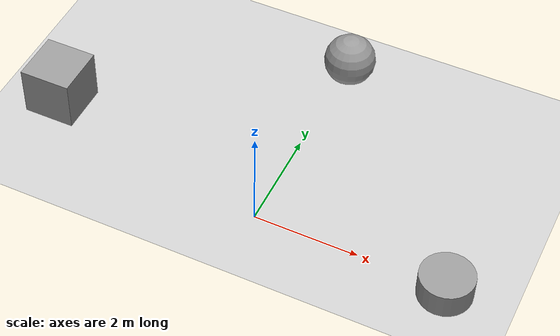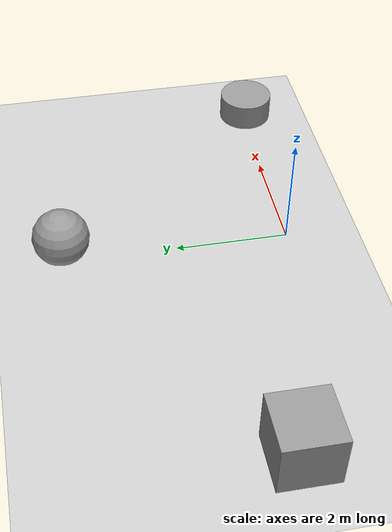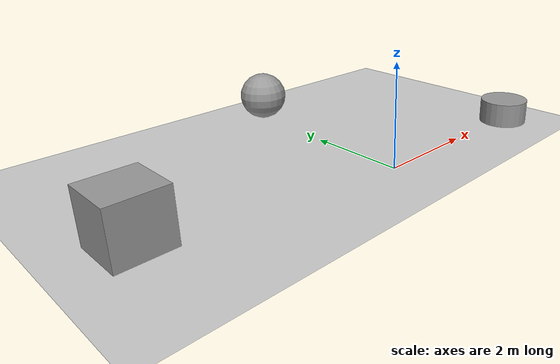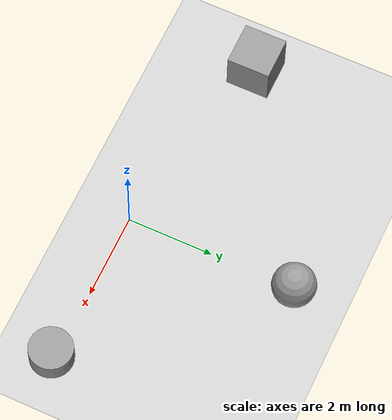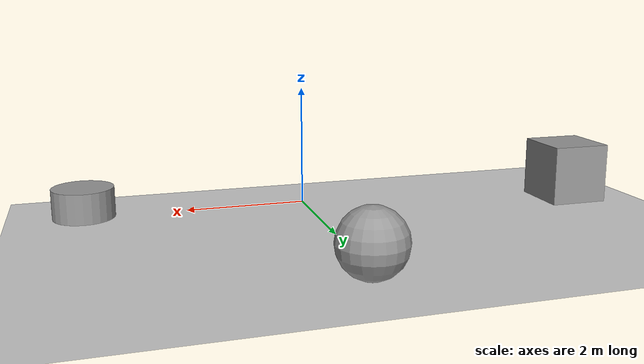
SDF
<sdf version="1.7">
 <world name="default">
  <scene>
   <sky><ambient>0.5 0.7 1.0 1.0</ambient></sky>
   <ambient>0.4 0.4 0.4 1</ambient>
   <background>0.7 0.7 0.7 1</background>
   <shadows>1</shadows>
  </scene>
  <light name="sun" type="directional">
   <pose>0 0 10 0 -0 0</pose>
   <diffuse>0.8 0.8 0.8 1</diffuse>
   <specular>0.2 0.2 0.2 1</specular>
   <attenuation>
    <range>1000</range>
    <constant>0.9</constant>
    <linear>0.01</linear>
    <quadratic>0.001</quadratic>
   </attenuation>
   <direction>-0.5 0.1 -0.9</direction>
   <spot><inner_angle>0</inner_angle><outer_angle>0</outer_angle><falloff>0</falloff></spot>
  </light>
  <model name="ground_plane">
   <static>1</static>
   <link name="link">
    <collision name="collision">
     <geometry><plane><normal>0 0 1</normal><size>100 100</size></plane></geometry>
     <surface>
      <contact><collide_bitmask>65535</collide_bitmask></contact>
      <friction><ode><mu>100</mu><mu2>50</mu2></ode></friction>
     </surface>
    </collision>
    <visual name="visual">
     <cast_shadows>0</cast_shadows>
     <geometry><plane><normal>0 0 1</normal><size>100 100</size></plane></geometry>
     <material>
      <script><uri>file://media/materials/scripts/gazebo.material</uri><name>Gazebo/Grey</name></script>
     </material>
    </visual>
   </link>
  </model>
  <gravity>0 0 -9.8</gravity>
  <magnetic_field>6e-06 2.3e-05 -4.2e-05</magnetic_field>
  <atmosphere type="adiabatic"/>
  <physics type="ode">
   <max_step_size>0.001</max_step_size>
   <real_time_factor>1</real_time_factor>
   <real_time_update_rate>1000</real_time_update_rate>
  </physics>
  <scene><ambient>0.4 0.4 0.4 1</ambient><background>0.7 0.7 0.7 1</background><shadows>1</shadows></scene>
  <spherical_coordinates>
   <surface_model>EARTH_WGS84</surface_model>
   <latitude_deg>0</latitude_deg>
   <longitude_deg>0</longitude_deg>
   <elevation>0</elevation>
   <heading_deg>0</heading_deg>
  </spherical_coordinates>
  <model name="unit_sphere">
   <pose>0.123452 4.01165 0.5 0 -0 0</pose>
   <link name="link">
    <inertial>
     <mass>1</mass>
     <inertia><ixx>0.001</ixx><iyy>0.001</iyy><izz>0.001</izz><ixy>0</ixy><ixz>0</ixz><iyz>0</iyz></inertia>
    </inertial>
    <collision name="collision"><geometry><sphere><radius>0.5</radius></sphere></geometry></collision>
    <visual name="visual">
     <geometry><sphere><radius>0.5</radius></sphere></geometry>
     <material>
      <script><name>Gazebo/Grey</name><uri>file://media/materials/scripts/gazebo.material</uri></script>
     </material>
    </visual>
   </link>
  </model>
  <model name="unit_box">
   <pose>-4.59357 1.00877 0.499995 -1e-05 -0 -0</pose>
   <link name="link">
    <inertial>
     <mass>1</mass>
     <inertia>
      <ixx>0.166667</ixx>
      <ixy>0</ixy>
      <ixz>0</ixz>
      <iyy>0.166667</iyy>
      <iyz>0</iyz>
      <izz>0.166667</izz>
     </inertia>
    </inertial>
    <collision name="collision"><geometry><box><size>1 1 1</size></box></geometry></collision>
    <visual name="visual">
     <geometry><box><size>1 1 1</size></box></geometry>
     <material>
      <script><name>Gazebo/Grey</name><uri>file://media/materials/scripts/gazebo.material</uri></script>
     </material>
    </visual>
   </link>
  </model>
  <model name="unit_cylinder">
   <pose>3.66354 -0.09688 0.249994 0 -0 0</pose>
   <link name="link">
    <inertial>
     <mass>1</mass>
     <inertia><ixx>0.145833</ixx><ixy>0</ixy><ixz>0</ixz><iyy>0.145833</iyy><iyz>0</iyz><izz>0.125</izz></inertia>
    </inertial>
    <collision name="collision">
     <geometry><cylinder><radius>0.5</radius><length>0.5</length></cylinder></geometry>
    </collision>
    <visual name="visual">
     <geometry><cylinder><radius>0.5</radius><length>0.5</length></cylinder></geometry>
     <material>
      <script><name>Gazebo/Grey</name><uri>file://media/materials/scripts/gazebo.material</uri></script>
     </material>
    </visual>
   </link>
  </model>
 </world>
</sdf>
